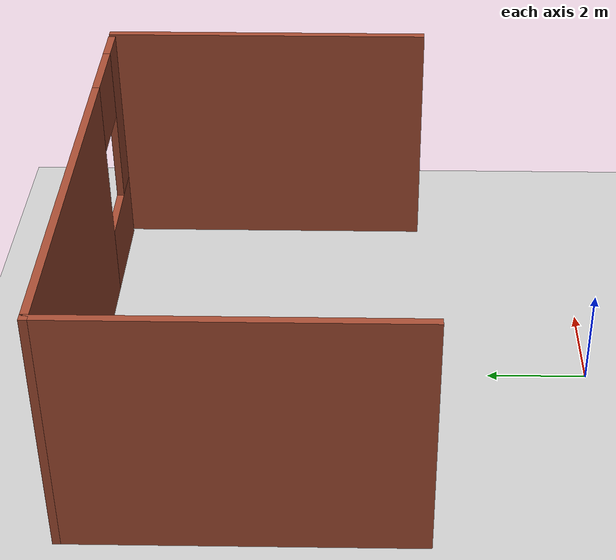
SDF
<sdf version="1.6">
 <world name="default">
  <model name="ground_plane">
   <static>1</static>
   <link name="link">
    <collision name="collision">
     <geometry><plane><normal>0 0 1</normal><size>100 100</size></plane></geometry>
     <surface><friction><ode><mu>100</mu><mu2>50</mu2></ode></friction></surface>
    </collision>
    <visual name="visual">
     <cast_shadows>0</cast_shadows>
     <geometry><plane><normal>0 0 1</normal><size>100 100</size></plane></geometry>
     <material>
      <script><uri>file://media/materials/scripts/gazebo.material</uri><name>Gazebo/Grey</name></script>
     </material>
    </visual>
   </link>
  </model>
  <model name="world3_p4">
   <pose>0.283802 6.66317 0 0 -0 0</pose>
   <link name="Wall_0">
    <pose>-0.125004 3.3 0 0 -0 3.3e-05</pose>
    <visual name="Wall_0_Visual_0">
     <pose>-1.14518 0 2.5 0 -0 0</pose>
     <geometry><box><size>7.70964 0.15 5</size></box></geometry>
     <material>
      <script><uri>file://media/materials/scripts/gazebo.material</uri><name>Gazebo/Bricks</name></script>
      <ambient>1 1 1 1</ambient>
     </material>
     <meta><layer>0</layer></meta>
    </visual>
    <collision name="Wall_0_Collision_0">
     <geometry><box><size>7.70964 0.15 5</size></box></geometry>
     <pose>-1.14518 0 2.5 0 -0 0</pose>
    </collision>
    <visual name="Wall_0_Visual_1">
     <pose>3.85482 0 0.75 0 -0 0</pose>
     <geometry><box><size>2.29036 0.15 1.5</size></box></geometry>
     <material>
      <script><uri>file://media/materials/scripts/gazebo.material</uri><name>Gazebo/Bricks</name></script>
      <ambient>1 1 1 1</ambient>
     </material>
     <meta><layer>0</layer></meta>
    </visual>
    <collision name="Wall_0_Collision_1">
     <geometry><box><size>2.29036 0.15 1.5</size></box></geometry>
     <pose>3.85482 0 0.75 0 -0 0</pose>
    </collision>
    <visual name="Wall_0_Visual_2">
     <pose>4.60482 0 3.25 0 -0 0</pose>
     <geometry><box><size>0.790358 0.15 3.5</size></box></geometry>
     <material>
      <script><uri>file://media/materials/scripts/gazebo.material</uri><name>Gazebo/Bricks</name></script>
      <ambient>1 1 1 1</ambient>
     </material>
     <meta><layer>0</layer></meta>
    </visual>
    <collision name="Wall_0_Collision_2">
     <geometry><box><size>0.790358 0.15 3.5</size></box></geometry>
     <pose>4.60482 0 3.25 0 -0 0</pose>
    </collision>
    <visual name="Wall_0_Visual_3">
     <pose>3.45964 0 4.25 0 -0 0</pose>
     <geometry><box><size>1.5 0.15 1.5</size></box></geometry>
     <material>
      <script><uri>file://media/materials/scripts/gazebo.material</uri><name>Gazebo/Bricks</name></script>
      <ambient>1 1 1 1</ambient>
     </material>
     <meta><layer>0</layer></meta>
    </visual>
    <collision name="Wall_0_Collision_3">
     <geometry><box><size>1.5 0.15 1.5</size></box></geometry>
     <pose>3.45964 0 4.25 0 -0 0</pose>
    </collision>
   </link>
   <link name="Wall_3">
    <collision name="Wall_3_Collision">
     <geometry><box><size>6.75 0.15 5</size></box></geometry>
     <pose>0 0 2.5 0 -0 0</pose>
    </collision>
    <visual name="Wall_3_Visual">
     <pose>0 0 2.5 0 -0 0</pose>
     <geometry><box><size>6.75 0.15 5</size></box></geometry>
     <material>
      <script><uri>file://media/materials/scripts/gazebo.material</uri><name>Gazebo/Bricks</name></script>
      <ambient>1 1 1 1</ambient>
     </material>
     <meta><layer>0</layer></meta>
    </visual>
    <pose>-5.04999 -0.000163 0 0 -0 -1.5708</pose>
   </link>
   <link name="Wall_5">
    <collision name="Wall_5_Collision">
     <geometry><box><size>6.75 0.15 5</size></box></geometry>
     <pose>0 0 2.5 0 -0 0</pose>
    </collision>
    <visual name="Wall_5_Visual">
     <pose>0 0 2.5 0 -0 0</pose>
     <geometry><box><size>6.75 0.15 5</size></box></geometry>
     <material>
      <script><uri>file://media/materials/scripts/gazebo.material</uri><name>Gazebo/Bricks</name></script>
      <ambient>1 1 1 1</ambient>
     </material>
     <meta><layer>0</layer></meta>
    </visual>
    <pose>5.05001 -0.000163 0 0 -0 1.5708</pose>
   </link>
   <static>1</static>
  </model>
 </world>
</sdf>
